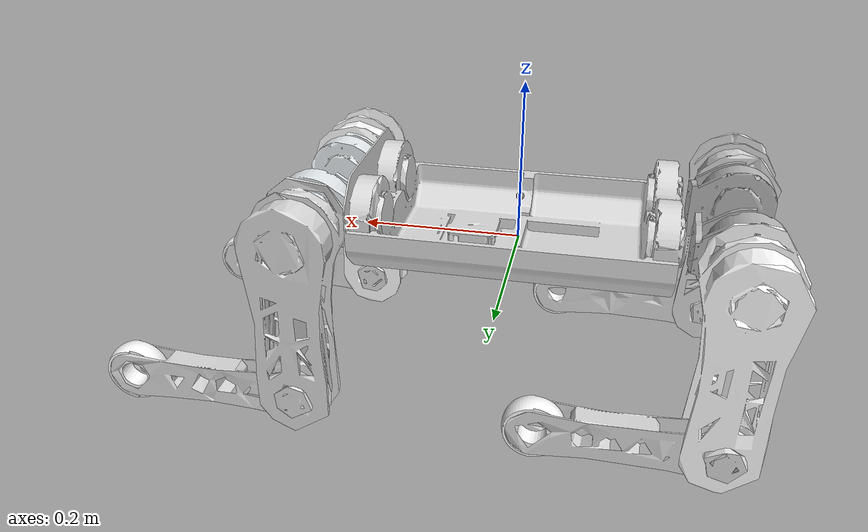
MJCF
<mujoco model="dog2">
  <compiler angle="radian"/>

  <asset>
    <mesh name="body_link" file="body_link.stl"/>
    <mesh name="lf_link1" file="lf_link1.stl"/>
    <mesh name="lf_link2" file="lf_link2.stl"/>
    <mesh name="lf_link3" file="lf_link3.stl"/>
    <mesh name="lf_link4" file="lf_link4.stl"/>
    <mesh name="rf_link1" file="rf_link1.stl"/>
    <mesh name="rf_link2" file="rf_link2.stl"/>
    <mesh name="rf_link3" file="rf_link3.stl"/>
    <mesh name="rf_link4" file="rf_link4.stl"/>
    <mesh name="lb_link1" file="lb_link1.stl"/>
    <mesh name="lb_link2" file="lb_link2.stl"/>
    <mesh name="lb_link3" file="lb_link3.stl"/>
    <mesh name="lb_link4" file="lb_link4.stl"/>
    <mesh name="rb_link1" file="rb_link1.stl"/>
    <mesh name="rb_link2" file="rb_link2.stl"/>
    <mesh name="rb_link3" file="rb_link3.stl"/>
    <mesh name="rb_link4" file="rb_link4.stl"/>
  </asset>

  <contact>
    <exclude body1="body_link" body2="lf_link1" />
    <exclude body1="body_link" body2="lf_link2" />
    <exclude body1="lf_link1" body2="lf_link2" />
    <exclude body1="lf_link2" body2="lf_link3" />
    <exclude body1="body_link" body2="rf_link1" />
    <exclude body1="body_link" body2="rf_link2" />
    <exclude body1="rf_link1" body2="rf_link2" />
    <exclude body1="rf_link2" body2="rf_link3" />
    <exclude body1="body_link" body2="lb_link1" />
    <exclude body1="body_link" body2="lb_link2" />
    <exclude body1="lb_link1" body2="lb_link2" />
    <exclude body1="lb_link2" body2="lb_link3" />
    <exclude body1="body_link" body2="rb_link1" />
    <exclude body1="body_link" body2="rb_link2" />
    <exclude body1="rb_link1" body2="rb_link2" />
    <exclude body1="rb_link2" body2="rb_link3" />
  </contact>

  <worldbody>
    <body name="body_link">
      <inertial pos="-0.012165 0.00021263 0.044979" quat="0.498766 0.50126 0.501545 0.498422" mass="4.829" diaginertia="0.0077349 0.0064997 0.0064421"/>
      <joint name="float_joint" type="free"/>
      <geom type="mesh" rgba="0.84706 0.84706 0.84706 1" mesh="body_link"/>

      <site name="imu" pos="0 0 0.056203" size="0.005"/>

      <body name="lf_link1" pos="0.18433 0.058364 0.045534" quat="0.499998 0.5 0.500002 0.5">
        <inertial pos="0.00904833 -0.000445724 0.0509866" quat="0.665686 0.746223 -0.00267471 -0.00234207" mass="0.676832" diaginertia="0.000670936 0.000393526 0.000332214"/>
        <joint name="lf_joint1" pos="0 0 0" axis="0 0 1" range="-3.14159 3.14159" actuatorfrcrange="-23 23"/>
        <geom type="mesh" rgba="0.898039 0.917647 0.929412 1" mesh="lf_link1"/>
        <body name="lf_link2" pos="0.031298 0.00022929 0.06" quat="0.499998 -0.5 0.500002 -0.5">
          <inertial pos="0.0472515 -0.000903642 0.0548579" quat="-0.0071742 0.707079 0.00726128 0.707061" mass="1.40828" diaginertia="0.0033784 0.00271564 0.000744898"/>
          <joint name="lf_joint2" pos="0 0 0" axis="0 0 1" range="-3.14159 3.14159" actuatorfrcrange="-23 23"/>
          <geom type="mesh" rgba="0.847059 0.847059 0.847059 1" mesh="lf_link2"/>
          <body name="lf_link3" pos="0.20707 -0.0041231 0.0716" quat="0.707107 0 0 -0.707107">
            <inertial pos="0.0710345 5.8224e-05 0.0342858" quat="0.686541 -0.169127 -0.167872 0.686933" mass="0.55126" diaginertia="0.0051297 0.00433268 0.00115437"/>
            <joint name="lf_joint3" pos="0 0 0" axis="0 0 1" range="-3.14159 3.14159" actuatorfrcrange="-23 23"/>
            <geom type="mesh" rgba="0.847059 0.847059 0.847059 1" mesh="lf_link3"/>
            <geom pos="0.22 0 0.001" quat="0.707105 0 0 -0.707108" type="mesh" rgba="1 1 1 1" mesh="lf_link4"/>
          </body>
        </body>
      </body>
      <body name="rf_link1" pos="0.18643 -0.06136 0.03776" quat="0.499998 0.5 0.500002 0.5">
        <inertial pos="-0.00903401 0.000387934 0.0511218" quat="0.746213 0.6657 -0.00181887 -0.00251592" mass="0.677616" diaginertia="0.000670938 0.000393562 0.000332251"/>
        <joint name="rf_joint1" pos="0 0 0" axis="0 0 1" range="-3.14159 3.14159" actuatorfrcrange="-23 23"/>
        <geom type="mesh" rgba="0.898039 0.917647 0.929412 1" mesh="rf_link1"/>
        <body name="rf_link2" pos="-0.0313 -0.00018614 0.06" quat="0.499998 0.5 -0.500002 -0.5">
          <inertial pos="0.0499237 -0.000955337 0.0541376" quat="-0.00716643 0.707079 0.00726178 0.707061" mass="1.35334" diaginertia="0.0032901 0.00268488 0.000673293"/>
          <joint name="rf_joint2" pos="0 0 0" axis="0 0 1" range="-3.14159 3.14159" actuatorfrcrange="-23 23"/>
          <geom type="mesh" rgba="1 1 1 1" mesh="rf_link2"/>
          <body name="rf_link3" pos="0.20707 -0.0041231 0.0726" quat="0.707105 0 0 0.707108">
            <inertial pos="0.0708807 -5.82332e-05 0.0334397" quat="0.686818 -0.168342 -0.169591 0.686426" mass="0.55126" diaginertia="0.00517324 0.00437793 0.00115266"/>
            <joint name="rf_joint3" pos="0 0 0" axis="0 0 1" range="-3.14159 3.14159" actuatorfrcrange="-23 23"/>
            <geom type="mesh" rgba="0.847059 0.847059 0.847059 1" mesh="rf_link3"/>
            <geom pos="0.22 0 0" quat="-2.59734e-06 0.707105 -0.707108 2.59735e-06" type="mesh" rgba="1 1 1 1" mesh="rf_link4"/>
          </body>
        </body>
      </body>
      <body name="lb_link1" pos="-0.20677 0.058639 0.03776" quat="0.499998 -0.5 -0.500002 0.5">
        <inertial pos="0.00904656 -0.000433656 0.0511412" quat="0.665693 0.746226 -3.12813e-05 0.000185032" mass="0.676832" diaginertia="0.000670936 0.000393526 0.000332214"/>
        <joint name="lb_joint1" pos="0 0 0" axis="0 0 1" range="-3.14159 3.14159" actuatorfrcrange="-23 23"/>
        <geom type="mesh" rgba="0.698039 0.698039 0.698039 1" mesh="lb_link1"/>
        <body name="lb_link2" pos="0.029301 -1.3226e-05 0.06" quat="0.499998 0.5 0.500002 0.5">
          <inertial pos="0.0472601 3.72003e-05 0.0568579" quat="-0.000134054 0.707116 0.000223979 0.707097" mass="1.40828" diaginertia="0.0033784 0.00271564 0.000744898"/>
          <joint name="lb_joint2" pos="0 0 0" axis="0 0 1" range="-3.14159 3.14159" actuatorfrcrange="-23 23"/>
          <geom type="mesh" rgba="1 1 1 1" mesh="lb_link2"/>
          <body name="lb_link3" pos="0.20711 0 0.0746" quat="0.707107 0 0 -0.707107">
            <inertial pos="0.0708807 -5.8232e-05 0.0334397" quat="0.686818 -0.168342 -0.169591 0.686426" mass="0.55126" diaginertia="0.00517324 0.00437793 0.00115266"/>
            <joint name="lb_joint3" pos="0 0 0" axis="0 0 1" range="-3.14159 3.14159" actuatorfrcrange="-23 23"/>
            <geom type="mesh" rgba="0.847059 0.847059 0.847059 1" mesh="lb_link3"/>
            <geom pos="0.22 0 0" quat="-2.59734e-06 0.707105 -0.707108 2.59735e-06" type="mesh" rgba="1 1 1 1" mesh="lb_link4"/>
          </body>
        </body>
      </body>
      <body name="rb_link1" pos="-0.20677 -0.06136 0.037786" quat="0.499998 -0.5 -0.500002 0.5">
        <inertial pos="-0.00904656 0.00053463 0.0509866" quat="0.746226 0.665693 -0.000170375 1.80447e-05" mass="0.676832" diaginertia="0.000670936 0.000393526 0.000332214"/>
        <joint name="rb_joint1" pos="0 0 0" axis="0 0 1" range="-3.14159 3.14159" actuatorfrcrange="-23 23"/>
        <geom type="mesh" rgba="0.698039 0.698039 0.698039 1" mesh="rb_link1"/>
        <body name="rb_link2" pos="-0.029301 1.3226e-05 0.06" quat="0.499998 -0.5 -0.500002 0.5">
          <inertial pos="0.0499328 3.87096e-05 0.0561376" quat="-0.000126154 0.707116 0.000224612 0.707097" mass="1.35334" diaginertia="0.0032901 0.00268488 0.000673293"/>
          <joint name="rb_joint2" pos="0 0 0" axis="0 0 1" range="-3.14159 3.14159" actuatorfrcrange="-23 23"/>
          <geom type="mesh" rgba="0.847059 0.847059 0.847059 1" mesh="rb_link2"/>
          <body name="rb_link3" pos="0.20711 0 0.0746" quat="0.707107 0 0 0.707107">
            <inertial pos="0.0721592 -5.92826e-05 0.0336926" quat="0.686239 -0.170691 -0.171936 0.685842" mass="0.541492" diaginertia="0.00519447 0.00440483 0.0011456"/>
            <joint name="rb_joint3" pos="0 0 0" axis="0 0 1" range="-3.14159 3.14159" actuatorfrcrange="-23 23"/>
            <geom type="mesh" rgba="0.847059 0.847059 0.847059 1" mesh="rb_link3"/>
            <geom pos="0.22 0 0" quat="-2.59734e-06 0.707105 -0.707108 2.59735e-06" type="mesh" rgba="1 1 1 1" mesh="rb_link4"/>
          </body>
        </body>
      </body>
    </body>
  </worldbody>

  <actuator>
        <!-- Left Front -->
        <motor name="lf_motor1" joint="lf_joint1" gear="1" ctrllimited="true" ctrlrange="-20 20" />
        <motor name="lf_motor2" joint="lf_joint2" gear="1" ctrllimited="true" ctrlrange="-20 20" />
        <motor name="lf_motor3" joint="lf_joint3" gear="1" ctrllimited="true" ctrlrange="-20 20" />

        <!-- Right Front -->
        <motor name="rf_motor1" joint="rf_joint1" gear="1" ctrllimited="true" ctrlrange="-20 20" />
        <motor name="rf_motor2" joint="rf_joint2" gear="1" ctrllimited="true" ctrlrange="-20 20" />
        <motor name="rf_motor3" joint="rf_joint3" gear="1" ctrllimited="true" ctrlrange="-20 20" />

        <!-- Left Back -->
        <motor name="lb_motor1" joint="lb_joint1" gear="1" ctrllimited="true" ctrlrange="-20 20" />
        <motor name="lb_motor2" joint="lb_joint2" gear="1" ctrllimited="true" ctrlrange="-20 20" />
        <motor name="lb_motor3" joint="lb_joint3" gear="1" ctrllimited="true" ctrlrange="-20 20" />

        <!-- Right Back -->
        <motor name="rb_motor1" joint="rb_joint1" gear="1" ctrllimited="true" ctrlrange="-20 20" />
        <motor name="rb_motor2" joint="rb_joint2" gear="1" ctrllimited="true" ctrlrange="-20 20" />
        <motor name="rb_motor3" joint="rb_joint3" gear="1" ctrllimited="true" ctrlrange="-20 20" />
  </actuator>

  <sensor>
        <!-- actuator position -->
        <actuatorpos name="lf_motor1_p" actuator="lf_motor1" />
        <actuatorpos name="lf_motor2_p" actuator="lf_motor2" />
        <actuatorpos name="lf_motor3_p" actuator="lf_motor3" />

        <actuatorpos name="rf_motor1_p" actuator="rf_motor1" />
        <actuatorpos name="rf_motor2_p" actuator="rf_motor2" />
        <actuatorpos name="rf_motor3_p" actuator="rf_motor3" />

        <actuatorpos name="lb_motor1_p" actuator="lb_motor1" />
        <actuatorpos name="lb_motor2_p" actuator="lb_motor2" />
        <actuatorpos name="lb_motor3_p" actuator="lb_motor3" />

        <actuatorpos name="rb_motor1_p" actuator="rb_motor1" />
        <actuatorpos name="rb_motor2_p" actuator="rb_motor2" />
        <actuatorpos name="rb_motor3_p" actuator="rb_motor3" />

        <!-- actuator velocity -->
        <actuatorvel name="lf_motor1_v" actuator="lf_motor1" />
        <actuatorvel name="lf_motor2_v" actuator="lf_motor2" />
        <actuatorvel name="lf_motor3_v" actuator="lf_motor3" />

        <actuatorvel name="rf_motor1_v" actuator="rf_motor1" />
        <actuatorvel name="rf_motor2_v" actuator="rf_motor2" />
        <actuatorvel name="rf_motor3_v" actuator="rf_motor3" />

        <actuatorvel name="lb_motor1_v" actuator="lb_motor1" />
        <actuatorvel name="lb_motor2_v" actuator="lb_motor2" />
        <actuatorvel name="lb_motor3_v" actuator="lb_motor3" />

        <actuatorvel name="rb_motor1_v" actuator="rb_motor1" />
        <actuatorvel name="rb_motor2_v" actuator="rb_motor2" />
        <actuatorvel name="rb_motor3_v" actuator="rb_motor3" />

        <!-- actuator force -->
        <actuatorfrc name="lf_motor1_f" actuator="lf_motor1" noise="1e-3" />
        <actuatorfrc name="lf_motor2_f" actuator="lf_motor2" noise="1e-3" />
        <actuatorfrc name="lf_motor3_f" actuator="lf_motor3" noise="1e-3" />

        <actuatorfrc name="rf_motor1_f" actuator="rf_motor1" noise="1e-3" />
        <actuatorfrc name="rf_motor2_f" actuator="rf_motor2" noise="1e-3" />
        <actuatorfrc name="rf_motor3_f" actuator="rf_motor3" noise="1e-3" />

        <actuatorfrc name="lb_motor1_f" actuator="lb_motor1" noise="1e-3" />
        <actuatorfrc name="lb_motor2_f" actuator="lb_motor2" noise="1e-3" />
        <actuatorfrc name="lb_motor3_f" actuator="lb_motor3" noise="1e-3" />

        <actuatorfrc name="rb_motor1_f" actuator="rb_motor1" noise="1e-3" />
        <actuatorfrc name="rb_motor2_f" actuator="rb_motor2" noise="1e-3" />
        <actuatorfrc name="rb_motor3_f" actuator="rb_motor3" noise="1e-3" />

        <!-- IMU (imu_main): pose/orientation + acceleration + angular velocity -->
        <accelerometer name="imu_main_acc" site="imu" />
        <gyro name="imu_main_gyro" site="imu" />
        <framequat name="imu_main_quat" objtype="site" objname="imu" />
  </sensor>

</mujoco>
